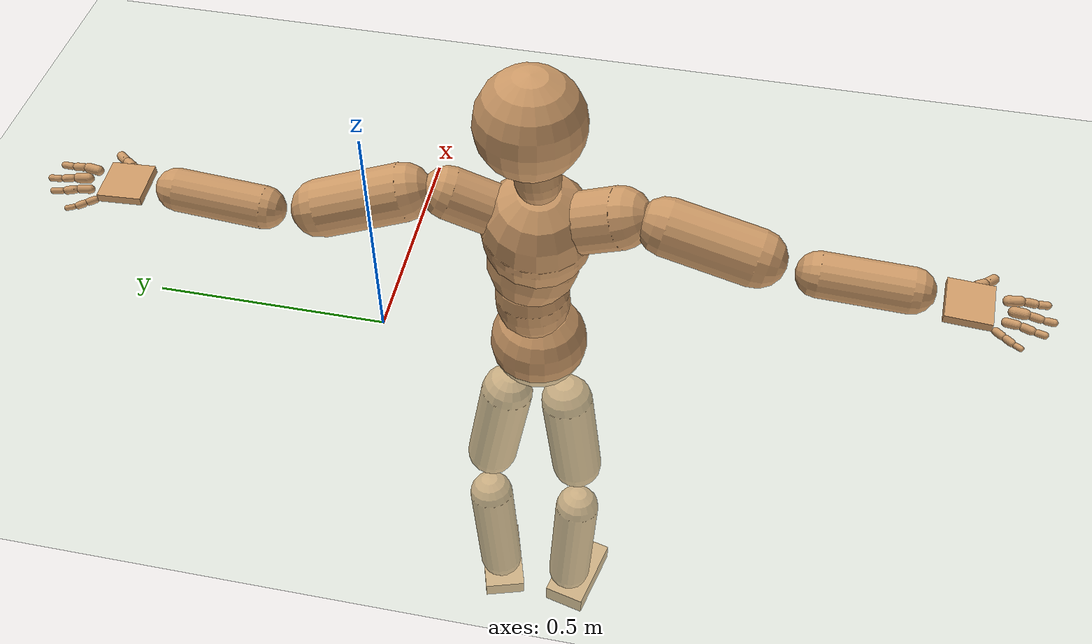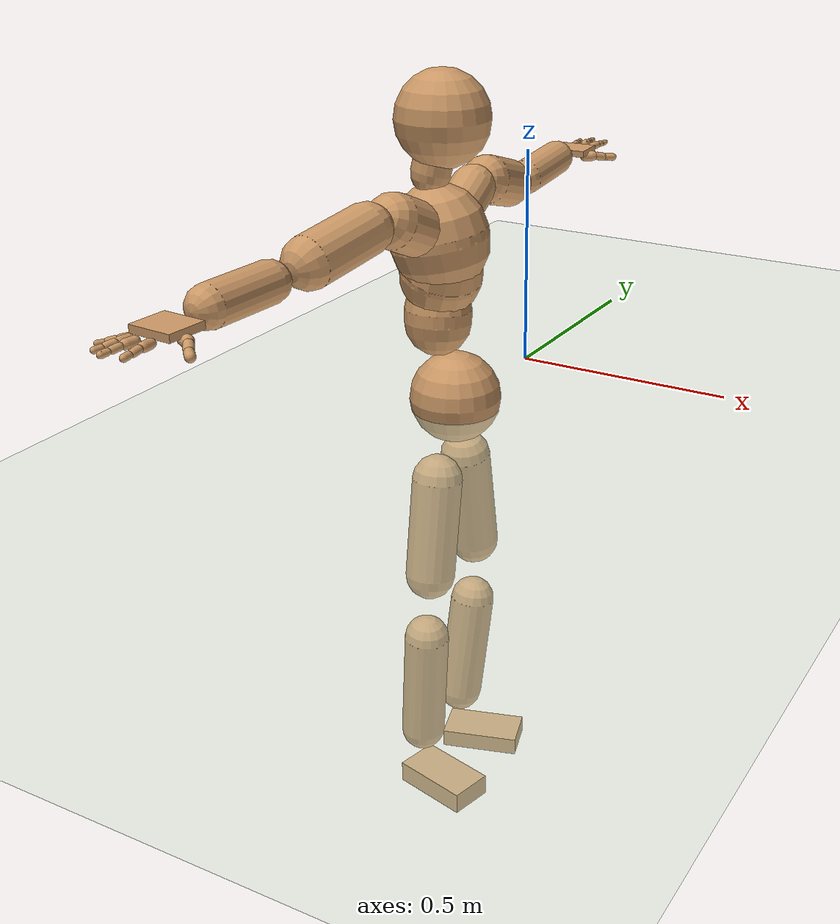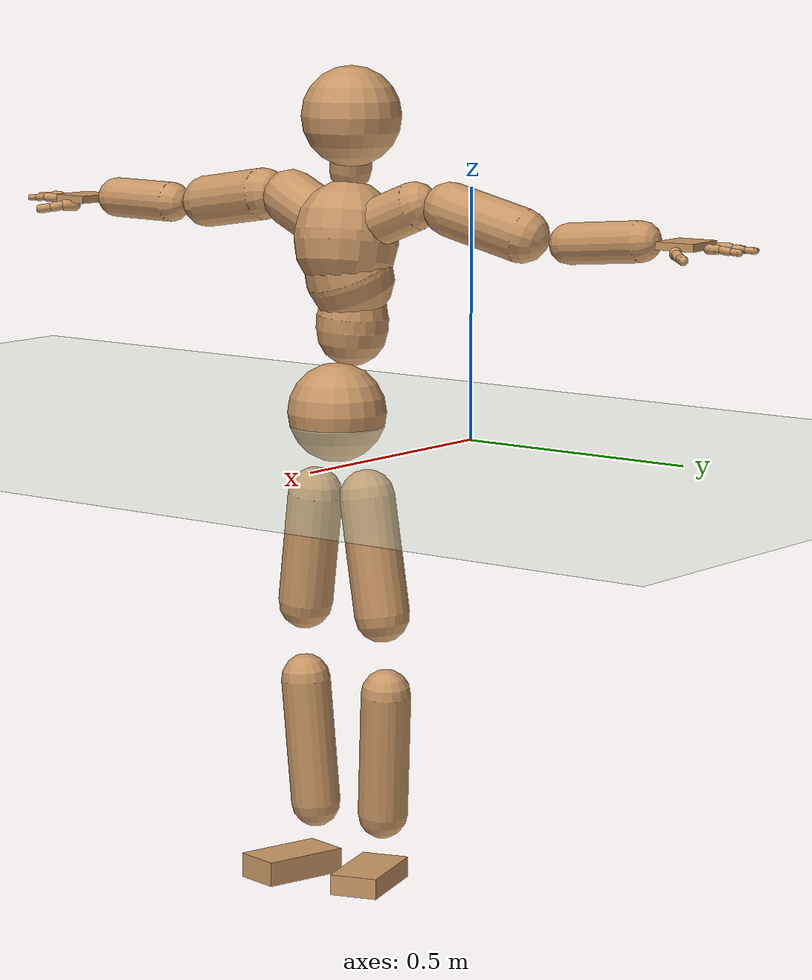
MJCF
<mujoco model="humanoid">
  <compiler coordinate="local" angle="radian"/>
  <default>
    <joint damping="0.0" armature="0.01" stiffness="0.0" limited="true"/>
    <geom conaffinity="1" condim="3" contype="7" margin="0.001" rgba="0.8 0.6 .4 1"/>
  </default>
  <asset>
    <texture type="skybox" builtin="gradient" rgb1=".4 .5 .6" rgb2="0 0 0" width="100" height="100"/>
    <texture builtin="flat" height="1278" mark="cross" markrgb="1 1 1" name="texgeom" random="0.01" rgb1="0.8 0.6 0.4" rgb2="0.8 0.6 0.4" type="cube" width="127"/>
    <texture builtin="checker" height="100" name="texplane" rgb1="0 0 0" rgb2="0.8 0.8 0.8" type="2d" width="100"/>
    <material name="MatPlane" reflectance="0.5" shininess="1" specular="1" texrepeat="60 60" texture="texplane"/>
    <material name="geom" texture="texgeom" texuniform="true"/>
  </asset>
  <worldbody>
    <light cutoff="100" diffuse="1 1 1" dir="-0 0 -1.3" directional="true" exponent="1" pos="0 0 1.3" specular=".1 .1 .1"/>
    <geom conaffinity="1" condim="3" name="floor" pos="0 0 0" rgba="0.8 0.9 0.8 1" size="100 100 .2" type="plane" material="MatPlane"/>
    <body name="Pelvis" pos="0.0015 -0.3378 0.0243">
      <freejoint name="Pelvis"/>
      <geom type="sphere" contype="1" conaffinity="1" density="500" size="0.1011" pos="0.0000 0.0000 0.0000" name="Pelvis"/>
      <body name="L_Hip" pos="-0.0144 0.0536 -0.0897">
        <joint name="L_Hip_x" type="hinge" pos="0 0 0" axis="1 0 0" stiffness="800" damping="80" armature="0.02" range="-180.0000 180.0000"/>
        <joint name="L_Hip_y" type="hinge" pos="0 0 0" axis="0 1 0" stiffness="800" damping="80" armature="0.02" range="-180.0000 180.0000"/>
        <joint name="L_Hip_z" type="hinge" pos="0 0 0" axis="0 0 1" stiffness="800" damping="80" armature="0.02" range="-180.0000 180.0000"/>
        <geom type="capsule" contype="1" conaffinity="1" density="500" fromto="0.0001 0.0130 -0.0798 0.0005 0.0519 -0.3190" size="0.0566" name="L_Hip"/>
        <body name="L_Knee" pos="0.0006 0.0648 -0.3988">
          <joint name="L_Knee_x" type="hinge" pos="0 0 0" axis="1 0 0" stiffness="800" damping="80" armature="0.02" range="-180.0000 180.0000"/>
          <joint name="L_Knee_y" type="hinge" pos="0 0 0" axis="0 1 0" stiffness="800" damping="80" armature="0.02" range="-180.0000 180.0000"/>
          <joint name="L_Knee_z" type="hinge" pos="0 0 0" axis="0 0 1" stiffness="800" damping="80" armature="0.02" range="-180.0000 180.0000"/>
          <geom type="capsule" contype="1" conaffinity="1" density="500" fromto="-0.0072 -0.0083 -0.0864 -0.0289 -0.0333 -0.3458" size="0.0515" name="L_Knee"/>
          <body name="L_Ankle" pos="-0.0361 -0.0416 -0.4322">
            <joint name="L_Ankle_x" type="hinge" pos="0 0 0" axis="1 0 0" stiffness="800" damping="80" armature="0.02" range="-180.0000 180.0000"/>
            <joint name="L_Ankle_y" type="hinge" pos="0 0 0" axis="0 1 0" stiffness="800" damping="80" armature="0.02" range="-180.0000 180.0000"/>
            <joint name="L_Ankle_z" type="hinge" pos="0 0 0" axis="0 0 1" stiffness="800" damping="80" armature="0.02" range="-180.0000 180.0000"/>
            <geom type="box" contype="1" conaffinity="1" density="500" pos="0.0665 0.0203 -0.0310" size="0.0917 0.0499 0.021" quat="0.9891 0.0000 0.0000 0.1473" name="L_Ankle"/>
            <body name="L_Toe" pos="0.1331 0.0406 -0.062">
              <joint name="L_Toe_x" type="hinge" pos="0 0 0" axis="1 0 0" stiffness="500" damping="50" armature="0.02" range="-180.0000 180.0000"/>
              <joint name="L_Toe_y" type="hinge" pos="0 0 0" axis="0 1 0" stiffness="500" damping="50" armature="0.02" range="-180.0000 180.0000"/>
              <joint name="L_Toe_z" type="hinge" pos="0 0 0" axis="0 0 1" stiffness="500" damping="50" armature="0.02" range="-180.0000 180.0000"/>
              <geom type="box" contype="1" conaffinity="1" density="500" pos="0.0000 0.0000 0.0313" size="0.001 0.0024 0.0011" quat="0.9884 0.0000 0.0000 0.1520" name="L_Toe"/>
            </body>
          </body>
        </body>
      </body>
      <body name="R_Hip" pos="-0.0085 -0.0555 -0.1008">
        <joint name="R_Hip_x" type="hinge" pos="0 0 0" axis="1 0 0" stiffness="800" damping="80" armature="0.02" range="-180.0000 180.0000"/>
        <joint name="R_Hip_y" type="hinge" pos="0 0 0" axis="0 1 0" stiffness="800" damping="80" armature="0.02" range="-180.0000 180.0000"/>
        <joint name="R_Hip_z" type="hinge" pos="0 0 0" axis="0 0 1" stiffness="800" damping="80" armature="0.02" range="-180.0000 180.0000"/>
        <geom type="capsule" contype="1" conaffinity="1" density="500" fromto="-0.0014 -0.0100 -0.0762 -0.0056 -0.0398 -0.3048" size="0.0562" name="R_Hip"/>
        <body name="R_Knee" pos="-0.007 -0.0498 -0.381">
          <joint name="R_Knee_x" type="hinge" pos="0 0 0" axis="1 0 0" stiffness="800" damping="80" armature="0.02" range="-180.0000 180.0000"/>
          <joint name="R_Knee_y" type="hinge" pos="0 0 0" axis="0 1 0" stiffness="800" damping="80" armature="0.02" range="-180.0000 180.0000"/>
          <joint name="R_Knee_z" type="hinge" pos="0 0 0" axis="0 0 1" stiffness="800" damping="80" armature="0.02" range="-180.0000 180.0000"/>
          <geom type="capsule" contype="1" conaffinity="1" density="500" fromto="-0.0069 0.0031 -0.0892 -0.0275 0.0123 -0.3570" size="0.051" name="R_Knee"/>
          <body name="R_Ankle" pos="-0.0343 0.0154 -0.4462">
            <joint name="R_Ankle_x" type="hinge" pos="0 0 0" axis="1 0 0" stiffness="800" damping="80" armature="0.02" range="-180.0000 180.0000"/>
            <joint name="R_Ankle_y" type="hinge" pos="0 0 0" axis="0 1 0" stiffness="800" damping="80" armature="0.02" range="-180.0000 180.0000"/>
            <joint name="R_Ankle_z" type="hinge" pos="0 0 0" axis="0 0 1" stiffness="800" damping="80" armature="0.02" range="-180.0000 180.0000"/>
            <geom type="box" contype="1" conaffinity="1" density="500" pos="0.0699 -0.0166 -0.0303" size="0.0917 0.0499 0.0252" quat="0.9932 0.0000 0.0000 -0.1162" name="R_Ankle"/>
            <body name="R_Toe" pos="0.1399 -0.0332 -0.0606">
              <joint name="R_Toe_x" type="hinge" pos="0 0 0" axis="1 0 0" stiffness="500" damping="50" armature="0.02" range="-180.0000 180.0000"/>
              <joint name="R_Toe_y" type="hinge" pos="0 0 0" axis="0 1 0" stiffness="500" damping="50" armature="0.02" range="-180.0000 180.0000"/>
              <joint name="R_Toe_z" type="hinge" pos="0 0 0" axis="0 0 1" stiffness="500" damping="50" armature="0.02" range="-180.0000 180.0000"/>
              <geom type="box" contype="1" conaffinity="1" density="500" pos="0.0000 0.0000 0.0264" size="0.001 0.0024 0.0011" quat="0.9942 0.0000 0.0000 -0.1079" name="R_Toe"/>
            </body>
          </body>
        </body>
      </body>
      <body name="Torso" pos="-0.0441 -0.0004 0.1087">
        <joint name="Torso_x" type="hinge" pos="0 0 0" axis="1 0 0" stiffness="1000" damping="100" armature="0.02" range="-180.0000 180.0000"/>
        <joint name="Torso_y" type="hinge" pos="0 0 0" axis="0 1 0" stiffness="1000" damping="100" armature="0.02" range="-180.0000 180.0000"/>
        <joint name="Torso_z" type="hinge" pos="0 0 0" axis="0 0 1" stiffness="1000" damping="100" armature="0.02" range="-180.0000 180.0000"/>
        <geom type="capsule" contype="1" conaffinity="1" density="500" fromto="-0.0003 0.0061 0.0838 -0.0002 0.0040 0.0558" size="0.0737" name="Torso"/>
        <body name="Spine" pos="-0.0005 0.0101 0.1396">
          <joint name="Spine_x" type="hinge" pos="0 0 0" axis="1 0 0" stiffness="1000" damping="100" armature="0.02" range="-180.0000 180.0000"/>
          <joint name="Spine_y" type="hinge" pos="0 0 0" axis="0 1 0" stiffness="1000" damping="100" armature="0.02" range="-180.0000 180.0000"/>
          <joint name="Spine_z" type="hinge" pos="0 0 0" axis="0 0 1" stiffness="1000" damping="100" armature="0.02" range="-180.0000 180.0000"/>
          <geom type="capsule" contype="1" conaffinity="1" density="500" fromto="0.0116 -0.0059 0.0320 0.0077 -0.0039 0.0213" size="0.0898" name="Spine"/>
          <body name="Chest" pos="0.0193 -0.0098 0.0533">
            <joint name="Chest_x" type="hinge" pos="0 0 0" axis="1 0 0" stiffness="1000" damping="100" armature="0.02" range="-180.0000 180.0000"/>
            <joint name="Chest_y" type="hinge" pos="0 0 0" axis="0 1 0" stiffness="1000" damping="100" armature="0.02" range="-180.0000 180.0000"/>
            <joint name="Chest_z" type="hinge" pos="0 0 0" axis="0 0 1" stiffness="1000" damping="100" armature="0.02" range="-180.0000 180.0000"/>
            <geom type="capsule" contype="1" conaffinity="1" density="500" fromto="-0.0105 -0.0029 0.0607 -0.0070 -0.0019 0.0405" size="0.1066" name="Chest"/>
            <body name="Neck" pos="-0.0311 -0.0102 0.1579">
              <joint name="Neck_x" type="hinge" pos="0 0 0" axis="1 0 0" stiffness="500" damping="50" armature="0.02" range="-180.0000 180.0000"/>
              <joint name="Neck_y" type="hinge" pos="0 0 0" axis="0 1 0" stiffness="500" damping="50" armature="0.02" range="-180.0000 180.0000"/>
              <joint name="Neck_z" type="hinge" pos="0 0 0" axis="0 0 1" stiffness="500" damping="50" armature="0.02" range="-180.0000 180.0000"/>
              <geom type="capsule" contype="1" conaffinity="1" density="500" fromto="0.0050 0.0046 0.0277 0.0199 0.0184 0.1108" size="0.0428" name="Neck"/>
              <body name="Head" pos="0.0248 0.023 0.1385">
                <joint name="Head_x" type="hinge" pos="0 0 0" axis="1 0 0" stiffness="500" damping="50" armature="0.02" range="-180.0000 180.0000"/>
                <joint name="Head_y" type="hinge" pos="0 0 0" axis="0 1 0" stiffness="500" damping="50" armature="0.02" range="-180.0000 180.0000"/>
                <joint name="Head_z" type="hinge" pos="0 0 0" axis="0 0 1" stiffness="500" damping="50" armature="0.02" range="-180.0000 180.0000"/>
                <geom type="sphere" contype="1" conaffinity="1" density="500" size="0.1017" pos="0.0000 0.0000 0.0000" name="Head"/>
              </body>
            </body>
            <body name="L_Thorax" pos="-0.0089 0.0438 0.0725">
              <joint name="L_Thorax_x" type="hinge" pos="0 0 0" axis="1 0 0" stiffness="500" damping="50" armature="0.02" range="-180.0000 180.0000"/>
              <joint name="L_Thorax_y" type="hinge" pos="0 0 0" axis="0 1 0" stiffness="500" damping="50" armature="0.02" range="-180.0000 180.0000"/>
              <joint name="L_Thorax_z" type="hinge" pos="0 0 0" axis="0 0 1" stiffness="500" damping="50" armature="0.02" range="-180.0000 180.0000"/>
              <geom type="capsule" contype="1" conaffinity="1" density="500" fromto="-0.0029 0.0294 0.0125 -0.0118 0.1175 0.0500" size="0.0498" name="L_Thorax"/>
              <body name="L_Shoulder" pos="-0.0147 0.1468 0.0626">
                <joint name="L_Shoulder_x" type="hinge" pos="0 0 0" axis="1 0 0" stiffness="500" damping="50" armature="0.02" range="-180.0000 180.0000"/>
                <joint name="L_Shoulder_y" type="hinge" pos="0 0 0" axis="0 1 0" stiffness="500" damping="50" armature="0.02" range="-180.0000 180.0000"/>
                <joint name="L_Shoulder_z" type="hinge" pos="0 0 0" axis="0 0 1" stiffness="500" damping="50" armature="0.02" range="-180.0000 180.0000"/>
                <geom type="capsule" contype="1" conaffinity="1" density="500" fromto="-0.0091 0.0519 -0.0147 -0.0365 0.2075 -0.0590" size="0.0548" name="L_Shoulder"/>
                <body name="L_Elbow" pos="-0.0456 0.2594 -0.0737">
                  <joint name="L_Elbow_x" type="hinge" pos="0 0 0" axis="1 0 0" stiffness="500" damping="50" armature="0.02" range="-720.0000 720.0000"/>
                  <joint name="L_Elbow_y" type="hinge" pos="0 0 0" axis="0 1 0" stiffness="500" damping="50" armature="0.02" range="-720.0000 720.0000"/>
                  <joint name="L_Elbow_z" type="hinge" pos="0 0 0" axis="0 0 1" stiffness="500" damping="50" armature="0.02" range="-720.0000 720.0000"/>
                  <geom type="capsule" contype="1" conaffinity="1" density="500" fromto="-0.0003 0.0553 0.0050 -0.0011 0.2214 0.0199" size="0.0409" name="L_Elbow"/>
                  <body name="L_Wrist" pos="-0.0014 0.2767 0.0249">
                    <joint name="L_Wrist_x" type="hinge" pos="0 0 0" axis="1 0 0" stiffness="300" damping="30" armature="0.02" range="-180.0000 180.0000"/>
                    <joint name="L_Wrist_y" type="hinge" pos="0 0 0" axis="0 1 0" stiffness="300" damping="30" armature="0.02" range="-180.0000 180.0000"/>
                    <joint name="L_Wrist_z" type="hinge" pos="0 0 0" axis="0 0 1" stiffness="300" damping="30" armature="0.02" range="-180.0000 180.0000"/>
                    <geom type="box" contype="1" conaffinity="1" density="500" pos="-0.0027 0.0456 -0.0052" size="0.0415 0.0455 0.0078" quat="0.7275 0.0000 0.0000 -0.6861" name="L_Wrist"/>
                    <body name="L_Index1" pos="0.0212 0.1069 -0.0072">
                      <joint name="L_Index1_x" type="hinge" pos="0 0 0" axis="1 0 0" stiffness="100" damping="10" armature="0.02" range="-180.0000 180.0000"/>
                      <joint name="L_Index1_y" type="hinge" pos="0 0 0" axis="0 1 0" stiffness="100" damping="10" armature="0.02" range="-180.0000 180.0000"/>
                      <joint name="L_Index1_z" type="hinge" pos="0 0 0" axis="0 0 1" stiffness="100" damping="10" armature="0.02" range="-180.0000 180.0000"/>
                      <geom type="capsule" contype="1" conaffinity="1" density="500" fromto="0.0007 0.0066 0.0003 0.0029 0.0266 0.0012" size="0.0095" name="L_Index1"/>
                      <body name="L_Index2" pos="0.0036 0.0332 0.0015">
                        <joint name="L_Index2_x" type="hinge" pos="0 0 0" axis="1 0 0" stiffness="100" damping="10" armature="0.02" range="-180.0000 180.0000"/>
                        <joint name="L_Index2_y" type="hinge" pos="0 0 0" axis="0 1 0" stiffness="100" damping="10" armature="0.02" range="-180.0000 180.0000"/>
                        <joint name="L_Index2_z" type="hinge" pos="0 0 0" axis="0 0 1" stiffness="100" damping="10" armature="0.02" range="-180.0000 180.0000"/>
                        <geom type="capsule" contype="1" conaffinity="1" density="500" fromto="-0.0001 0.0047 -0.0005 -0.0002 0.0188 -0.0022" size="0.0078" name="L_Index2"/>
                        <body name="L_Index3" pos="-0.0003 0.0234 -0.0027">
                          <joint name="L_Index3_x" type="hinge" pos="0 0 0" axis="1 0 0" stiffness="100" damping="10" armature="0.02" range="-180.0000 180.0000"/>
                          <joint name="L_Index3_y" type="hinge" pos="0 0 0" axis="0 1 0" stiffness="100" damping="10" armature="0.02" range="-180.0000 180.0000"/>
                          <joint name="L_Index3_z" type="hinge" pos="0 0 0" axis="0 0 1" stiffness="100" damping="10" armature="0.02" range="-180.0000 180.0000"/>
                          <geom type="capsule" contype="1" conaffinity="1" density="500" fromto="0.0003 0.0051 -0.0001 0.0014 0.0204 -0.0006" size="0.0067" name="L_Index3"/>
                        </body>
                      </body>
                    </body>
                    <body name="L_Middle1" pos="-0.0032 0.115 -0.0049">
                      <joint name="L_Middle1_x" type="hinge" pos="0 0 0" axis="1 0 0" stiffness="100" damping="10" armature="0.02" range="-180.0000 180.0000"/>
                      <joint name="L_Middle1_y" type="hinge" pos="0 0 0" axis="0 1 0" stiffness="100" damping="10" armature="0.02" range="-180.0000 180.0000"/>
                      <joint name="L_Middle1_z" type="hinge" pos="0 0 0" axis="0 0 1" stiffness="100" damping="10" armature="0.02" range="-180.0000 180.0000"/>
                      <geom type="capsule" contype="1" conaffinity="1" density="500" fromto="-0.0009 0.0064 0.0001 -0.0035 0.0255 0.0002" size="0.0097" name="L_Middle1"/>
                      <body name="L_Middle2" pos="-0.0044 0.0319 0.0003">
                        <joint name="L_Middle2_x" type="hinge" pos="0 0 0" axis="1 0 0" stiffness="100" damping="10" armature="0.02" range="-180.0000 180.0000"/>
                        <joint name="L_Middle2_y" type="hinge" pos="0 0 0" axis="0 1 0" stiffness="100" damping="10" armature="0.02" range="-180.0000 180.0000"/>
                        <joint name="L_Middle2_z" type="hinge" pos="0 0 0" axis="0 0 1" stiffness="100" damping="10" armature="0.02" range="-180.0000 180.0000"/>
                        <geom type="capsule" contype="1" conaffinity="1" density="500" fromto="-0.0009 0.0049 -0.0005 -0.0036 0.0195 -0.0021" size="0.0072" name="L_Middle2"/>
                        <body name="L_Middle3" pos="-0.0045 0.0244 -0.0027">
                          <joint name="L_Middle3_x" type="hinge" pos="0 0 0" axis="1 0 0" stiffness="100" damping="10" armature="0.02" range="-180.0000 180.0000"/>
                          <joint name="L_Middle3_y" type="hinge" pos="0 0 0" axis="0 1 0" stiffness="100" damping="10" armature="0.02" range="-180.0000 180.0000"/>
                          <joint name="L_Middle3_z" type="hinge" pos="0 0 0" axis="0 0 1" stiffness="100" damping="10" armature="0.02" range="-180.0000 180.0000"/>
                          <geom type="capsule" contype="1" conaffinity="1" density="500" fromto="-0.0005 0.0053 -0.0001 -0.0020 0.0211 -0.0005" size="0.0064" name="L_Middle3"/>
                        </body>
                      </body>
                    </body>
                    <body name="L_Pinky1" pos="-0.0446 0.0889 -0.0136">
                      <joint name="L_Pinky1_x" type="hinge" pos="0 0 0" axis="1 0 0" stiffness="100" damping="10" armature="0.02" range="-180.0000 180.0000"/>
                      <joint name="L_Pinky1_y" type="hinge" pos="0 0 0" axis="0 1 0" stiffness="100" damping="10" armature="0.02" range="-180.0000 180.0000"/>
                      <joint name="L_Pinky1_z" type="hinge" pos="0 0 0" axis="0 0 1" stiffness="100" damping="10" armature="0.02" range="-180.0000 180.0000"/>
                      <geom type="capsule" contype="1" conaffinity="1" density="500" fromto="-0.0025 0.0034 -0.0003 -0.0098 0.0136 -0.0013" size="0.007" name="L_Pinky1"/>
                      <body name="L_Pinky2" pos="-0.0123 0.017 -0.0016">
                        <joint name="L_Pinky2_x" type="hinge" pos="0 0 0" axis="1 0 0" stiffness="100" damping="10" armature="0.02" range="-180.0000 180.0000"/>
                        <joint name="L_Pinky2_y" type="hinge" pos="0 0 0" axis="0 1 0" stiffness="100" damping="10" armature="0.02" range="-180.0000 180.0000"/>
                        <joint name="L_Pinky2_z" type="hinge" pos="0 0 0" axis="0 0 1" stiffness="100" damping="10" armature="0.02" range="-180.0000 180.0000"/>
                        <geom type="capsule" contype="1" conaffinity="1" density="500" fromto="-0.0023 0.0033 -0.0004 -0.0091 0.0132 -0.0016" size="0.0067" name="L_Pinky2"/>
                        <body name="L_Pinky3" pos="-0.0114 0.0165 -0.002">
                          <joint name="L_Pinky3_x" type="hinge" pos="0 0 0" axis="1 0 0" stiffness="100" damping="10" armature="0.02" range="-180.0000 180.0000"/>
                          <joint name="L_Pinky3_y" type="hinge" pos="0 0 0" axis="0 1 0" stiffness="100" damping="10" armature="0.02" range="-180.0000 180.0000"/>
                          <joint name="L_Pinky3_z" type="hinge" pos="0 0 0" axis="0 0 1" stiffness="100" damping="10" armature="0.02" range="-180.0000 180.0000"/>
                          <geom type="capsule" contype="1" conaffinity="1" density="500" fromto="-0.0019 0.0037 -0.0000 -0.0075 0.0148 -0.0000" size="0.0051" name="L_Pinky3"/>
                        </body>
                      </body>
                    </body>
                    <body name="L_Ring1" pos="-0.0274 0.1027 -0.0081">
                      <joint name="L_Ring1_x" type="hinge" pos="0 0 0" axis="1 0 0" stiffness="100" damping="10" armature="0.02" range="-180.0000 180.0000"/>
                      <joint name="L_Ring1_y" type="hinge" pos="0 0 0" axis="0 1 0" stiffness="100" damping="10" armature="0.02" range="-180.0000 180.0000"/>
                      <joint name="L_Ring1_z" type="hinge" pos="0 0 0" axis="0 0 1" stiffness="100" damping="10" armature="0.02" range="-180.0000 180.0000"/>
                      <geom type="capsule" contype="1" conaffinity="1" density="500" fromto="-0.0010 0.0059 0.0001 -0.0042 0.0236 0.0003" size="0.0082" name="L_Ring1"/>
                      <body name="L_Ring2" pos="-0.0052 0.0295 0.0003">
                        <joint name="L_Ring2_x" type="hinge" pos="0 0 0" axis="1 0 0" stiffness="100" damping="10" armature="0.02" range="-180.0000 180.0000"/>
                        <joint name="L_Ring2_y" type="hinge" pos="0 0 0" axis="0 1 0" stiffness="100" damping="10" armature="0.02" range="-180.0000 180.0000"/>
                        <joint name="L_Ring2_z" type="hinge" pos="0 0 0" axis="0 0 1" stiffness="100" damping="10" armature="0.02" range="-180.0000 180.0000"/>
                        <geom type="capsule" contype="1" conaffinity="1" density="500" fromto="-0.0014 0.0048 -0.0005 -0.0055 0.0191 -0.0020" size="0.0077" name="L_Ring2"/>
                        <body name="L_Ring3" pos="-0.0069 0.0239 -0.0025">
                          <joint name="L_Ring3_x" type="hinge" pos="0 0 0" axis="1 0 0" stiffness="100" damping="10" armature="0.02" range="-180.0000 180.0000"/>
                          <joint name="L_Ring3_y" type="hinge" pos="0 0 0" axis="0 1 0" stiffness="100" damping="10" armature="0.02" range="-180.0000 180.0000"/>
                          <joint name="L_Ring3_z" type="hinge" pos="0 0 0" axis="0 0 1" stiffness="100" damping="10" armature="0.02" range="-180.0000 180.0000"/>
                          <geom type="capsule" contype="1" conaffinity="1" density="500" fromto="-0.0010 0.0052 -0.0001 -0.0039 0.0207 -0.0004" size="0.006" name="L_Ring3"/>
                        </body>
                      </body>
                    </body>
                    <body name="L_Thumb1" pos="0.0273 0.0429 -0.0185">
                      <joint name="L_Thumb1_x" type="hinge" pos="0 0 0" axis="1 0 0" stiffness="100" damping="10" armature="0.02" range="-180.0000 180.0000"/>
                      <joint name="L_Thumb1_y" type="hinge" pos="0 0 0" axis="0 1 0" stiffness="100" damping="10" armature="0.02" range="-180.0000 180.0000"/>
                      <joint name="L_Thumb1_z" type="hinge" pos="0 0 0" axis="0 0 1" stiffness="100" damping="10" armature="0.02" range="-180.0000 180.0000"/>
                      <geom type="capsule" contype="1" conaffinity="1" density="500" fromto="0.0054 0.0034 0.0003 0.0215 0.0138 0.0013" size="0.0124" name="L_Thumb1"/>
                      <body name="L_Thumb2" pos="0.0269 0.0172 0.0016">
                        <joint name="L_Thumb2_x" type="hinge" pos="0 0 0" axis="1 0 0" stiffness="100" damping="10" armature="0.02" range="-180.0000 180.0000"/>
                        <joint name="L_Thumb2_y" type="hinge" pos="0 0 0" axis="0 1 0" stiffness="100" damping="10" armature="0.02" range="-180.0000 180.0000"/>
                        <joint name="L_Thumb2_z" type="hinge" pos="0 0 0" axis="0 0 1" stiffness="100" damping="10" armature="0.02" range="-180.0000 180.0000"/>
                        <geom type="capsule" contype="1" conaffinity="1" density="500" fromto="0.0034 0.0041 -0.0010 0.0137 0.0164 -0.0041" size="0.01" name="L_Thumb2"/>
                        <body name="L_Thumb3" pos="0.0171 0.0205 -0.0051">
                          <joint name="L_Thumb3_x" type="hinge" pos="0 0 0" axis="1 0 0" stiffness="100" damping="10" armature="0.02" range="-180.0000 180.0000"/>
                          <joint name="L_Thumb3_y" type="hinge" pos="0 0 0" axis="0 1 0" stiffness="100" damping="10" armature="0.02" range="-180.0000 180.0000"/>
                          <joint name="L_Thumb3_z" type="hinge" pos="0 0 0" axis="0 0 1" stiffness="100" damping="10" armature="0.02" range="-180.0000 180.0000"/>
                          <geom type="capsule" contype="1" conaffinity="1" density="500" fromto="0.0038 0.0045 -0.0006 0.0153 0.0180 -0.0025" size="0.0093" name="L_Thumb3"/>
                        </body>
                      </body>
                    </body>
                  </body>
                </body>
              </body>
            </body>
            <body name="R_Thorax" pos="-0.0125 -0.0481 0.0731">
              <joint name="R_Thorax_x" type="hinge" pos="0 0 0" axis="1 0 0" stiffness="500" damping="50" armature="0.02" range="-180.0000 180.0000"/>
              <joint name="R_Thorax_y" type="hinge" pos="0 0 0" axis="0 1 0" stiffness="500" damping="50" armature="0.02" range="-180.0000 180.0000"/>
              <joint name="R_Thorax_z" type="hinge" pos="0 0 0" axis="0 0 1" stiffness="500" damping="50" armature="0.02" range="-180.0000 180.0000"/>
              <geom type="capsule" contype="1" conaffinity="1" density="500" fromto="-0.0024 -0.0271 0.0120 -0.0096 -0.1083 0.0480" size="0.0587" name="R_Thorax"/>
              <body name="R_Shoulder" pos="-0.012 -0.1354 0.06">
                <joint name="R_Shoulder_x" type="hinge" pos="0 0 0" axis="1 0 0" stiffness="500" damping="50" armature="0.02" range="-180.0000 180.0000"/>
                <joint name="R_Shoulder_y" type="hinge" pos="0 0 0" axis="0 1 0" stiffness="500" damping="50" armature="0.02" range="-180.0000 180.0000"/>
                <joint name="R_Shoulder_z" type="hinge" pos="0 0 0" axis="0 0 1" stiffness="500" damping="50" armature="0.02" range="-180.0000 180.0000"/>
                <geom type="capsule" contype="1" conaffinity="1" density="500" fromto="-0.0066 -0.0557 -0.0088 -0.0264 -0.2227 -0.0351" size="0.0539" name="R_Shoulder"/>
                <body name="R_Elbow" pos="-0.0329 -0.2783 -0.0439">
                  <joint name="R_Elbow_x" type="hinge" pos="0 0 0" axis="1 0 0" stiffness="500" damping="50" armature="0.02" range="-720.0000 720.0000"/>
                  <joint name="R_Elbow_y" type="hinge" pos="0 0 0" axis="0 1 0" stiffness="500" damping="50" armature="0.02" range="-720.0000 720.0000"/>
                  <joint name="R_Elbow_z" type="hinge" pos="0 0 0" axis="0 0 1" stiffness="500" damping="50" armature="0.02" range="-720.0000 720.0000"/>
                  <geom type="capsule" contype="1" conaffinity="1" density="500" fromto="-0.0024 -0.0536 0.0001 -0.0097 -0.2145 0.0005" size="0.0419" name="R_Elbow"/>
                  <body name="R_Wrist" pos="-0.0121 -0.2681 0.0007">
                    <joint name="R_Wrist_x" type="hinge" pos="0 0 0" axis="1 0 0" stiffness="300" damping="30" armature="0.02" range="-180.0000 180.0000"/>
                    <joint name="R_Wrist_y" type="hinge" pos="0 0 0" axis="0 1 0" stiffness="300" damping="30" armature="0.02" range="-180.0000 180.0000"/>
                    <joint name="R_Wrist_z" type="hinge" pos="0 0 0" axis="0 0 1" stiffness="300" damping="30" armature="0.02" range="-180.0000 180.0000"/>
                    <geom type="box" contype="1" conaffinity="1" density="500" pos="-0.0032 -0.0454 -0.0070" size="0.0415 0.0468 0.0079" quat="0.7315 0.0000 0.0000 0.6818" name="R_Wrist"/>
                    <body name="R_Index1" pos="0.0202 -0.1064 -0.0108">
                      <joint name="R_Index1_x" type="hinge" pos="0 0 0" axis="1 0 0" stiffness="100" damping="10" armature="0.02" range="-180.0000 180.0000"/>
                      <joint name="R_Index1_y" type="hinge" pos="0 0 0" axis="0 1 0" stiffness="100" damping="10" armature="0.02" range="-180.0000 180.0000"/>
                      <joint name="R_Index1_z" type="hinge" pos="0 0 0" axis="0 0 1" stiffness="100" damping="10" armature="0.02" range="-180.0000 180.0000"/>
                      <geom type="capsule" contype="1" conaffinity="1" density="500" fromto="0.0007 -0.0066 0.0003 0.0029 -0.0266 0.0012" size="0.0095" name="R_Index1"/>
                      <body name="R_Index2" pos="0.0036 -0.0332 0.0015">
                        <joint name="R_Index2_x" type="hinge" pos="0 0 0" axis="1 0 0" stiffness="100" damping="10" armature="0.02" range="-180.0000 180.0000"/>
                        <joint name="R_Index2_y" type="hinge" pos="0 0 0" axis="0 1 0" stiffness="100" damping="10" armature="0.02" range="-180.0000 180.0000"/>
                        <joint name="R_Index2_z" type="hinge" pos="0 0 0" axis="0 0 1" stiffness="100" damping="10" armature="0.02" range="-180.0000 180.0000"/>
                        <geom type="capsule" contype="1" conaffinity="1" density="500" fromto="-0.0001 -0.0047 -0.0005 -0.0002 -0.0188 -0.0022" size="0.0078" name="R_Index2"/>
                        <body name="R_Index3" pos="-0.0003 -0.0234 -0.0027">
                          <joint name="R_Index3_x" type="hinge" pos="0 0 0" axis="1 0 0" stiffness="100" damping="10" armature="0.02" range="-180.0000 180.0000"/>
                          <joint name="R_Index3_y" type="hinge" pos="0 0 0" axis="0 1 0" stiffness="100" damping="10" armature="0.02" range="-180.0000 180.0000"/>
                          <joint name="R_Index3_z" type="hinge" pos="0 0 0" axis="0 0 1" stiffness="100" damping="10" armature="0.02" range="-180.0000 180.0000"/>
                          <geom type="capsule" contype="1" conaffinity="1" density="500" fromto="0.0003 -0.0043 -0.0001 0.0014 -0.0172 -0.0006" size="0.007" name="R_Index3"/>
                        </body>
                      </body>
                    </body>
                    <body name="R_Middle1" pos="-0.0042 -0.1145 -0.0085">
                      <joint name="R_Middle1_x" type="hinge" pos="0 0 0" axis="1 0 0" stiffness="100" damping="10" armature="0.02" range="-180.0000 180.0000"/>
                      <joint name="R_Middle1_y" type="hinge" pos="0 0 0" axis="0 1 0" stiffness="100" damping="10" armature="0.02" range="-180.0000 180.0000"/>
                      <joint name="R_Middle1_z" type="hinge" pos="0 0 0" axis="0 0 1" stiffness="100" damping="10" armature="0.02" range="-180.0000 180.0000"/>
                      <geom type="capsule" contype="1" conaffinity="1" density="500" fromto="-0.0009 -0.0064 0.0001 -0.0035 -0.0255 0.0002" size="0.0097" name="R_Middle1"/>
                      <body name="R_Middle2" pos="-0.0044 -0.0319 0.0003">
                        <joint name="R_Middle2_x" type="hinge" pos="0 0 0" axis="1 0 0" stiffness="100" damping="10" armature="0.02" range="-180.0000 180.0000"/>
                        <joint name="R_Middle2_y" type="hinge" pos="0 0 0" axis="0 1 0" stiffness="100" damping="10" armature="0.02" range="-180.0000 180.0000"/>
                        <joint name="R_Middle2_z" type="hinge" pos="0 0 0" axis="0 0 1" stiffness="100" damping="10" armature="0.02" range="-180.0000 180.0000"/>
                        <geom type="capsule" contype="1" conaffinity="1" density="500" fromto="-0.0009 -0.0049 -0.0005 -0.0036 -0.0195 -0.0021" size="0.0072" name="R_Middle2"/>
                        <body name="R_Middle3" pos="-0.0045 -0.0244 -0.0027">
                          <joint name="R_Middle3_x" type="hinge" pos="0 0 0" axis="1 0 0" stiffness="100" damping="10" armature="0.02" range="-180.0000 180.0000"/>
                          <joint name="R_Middle3_y" type="hinge" pos="0 0 0" axis="0 1 0" stiffness="100" damping="10" armature="0.02" range="-180.0000 180.0000"/>
                          <joint name="R_Middle3_z" type="hinge" pos="0 0 0" axis="0 0 1" stiffness="100" damping="10" armature="0.02" range="-180.0000 180.0000"/>
                          <geom type="capsule" contype="1" conaffinity="1" density="500" fromto="-0.0005 -0.0045 -0.0001 -0.0020 -0.0179 -0.0005" size="0.0067" name="R_Middle3"/>
                        </body>
                      </body>
                    </body>
                    <body name="R_Pinky1" pos="-0.0457 -0.0885 -0.0172">
                      <joint name="R_Pinky1_x" type="hinge" pos="0 0 0" axis="1 0 0" stiffness="100" damping="10" armature="0.02" range="-180.0000 180.0000"/>
                      <joint name="R_Pinky1_y" type="hinge" pos="0 0 0" axis="0 1 0" stiffness="100" damping="10" armature="0.02" range="-180.0000 180.0000"/>
                      <joint name="R_Pinky1_z" type="hinge" pos="0 0 0" axis="0 0 1" stiffness="100" damping="10" armature="0.02" range="-180.0000 180.0000"/>
                      <geom type="capsule" contype="1" conaffinity="1" density="500" fromto="-0.0025 -0.0034 -0.0003 -0.0098 -0.0136 -0.0013" size="0.007" name="R_Pinky1"/>
                      <body name="R_Pinky2" pos="-0.0123 -0.017 -0.0016">
                        <joint name="R_Pinky2_x" type="hinge" pos="0 0 0" axis="1 0 0" stiffness="100" damping="10" armature="0.02" range="-180.0000 180.0000"/>
                        <joint name="R_Pinky2_y" type="hinge" pos="0 0 0" axis="0 1 0" stiffness="100" damping="10" armature="0.02" range="-180.0000 180.0000"/>
                        <joint name="R_Pinky2_z" type="hinge" pos="0 0 0" axis="0 0 1" stiffness="100" damping="10" armature="0.02" range="-180.0000 180.0000"/>
                        <geom type="capsule" contype="1" conaffinity="1" density="500" fromto="-0.0023 -0.0033 -0.0004 -0.0091 -0.0132 -0.0016" size="0.0067" name="R_Pinky2"/>
                        <body name="R_Pinky3" pos="-0.0114 -0.0165 -0.002">
                          <joint name="R_Pinky3_x" type="hinge" pos="0 0 0" axis="1 0 0" stiffness="100" damping="10" armature="0.02" range="-180.0000 180.0000"/>
                          <joint name="R_Pinky3_y" type="hinge" pos="0 0 0" axis="0 1 0" stiffness="100" damping="10" armature="0.02" range="-180.0000 180.0000"/>
                          <joint name="R_Pinky3_z" type="hinge" pos="0 0 0" axis="0 0 1" stiffness="100" damping="10" armature="0.02" range="-180.0000 180.0000"/>
                          <geom type="capsule" contype="1" conaffinity="1" density="500" fromto="-0.0019 -0.0029 -0.0000 -0.0075 -0.0116 -0.0000" size="0.0053" name="R_Pinky3"/>
                        </body>
                      </body>
                    </body>
                    <body name="R_Ring1" pos="-0.0285 -0.1022 -0.0117">
                      <joint name="R_Ring1_x" type="hinge" pos="0 0 0" axis="1 0 0" stiffness="100" damping="10" armature="0.02" range="-180.0000 180.0000"/>
                      <joint name="R_Ring1_y" type="hinge" pos="0 0 0" axis="0 1 0" stiffness="100" damping="10" armature="0.02" range="-180.0000 180.0000"/>
                      <joint name="R_Ring1_z" type="hinge" pos="0 0 0" axis="0 0 1" stiffness="100" damping="10" armature="0.02" range="-180.0000 180.0000"/>
                      <geom type="capsule" contype="1" conaffinity="1" density="500" fromto="-0.0010 -0.0059 0.0001 -0.0042 -0.0236 0.0003" size="0.0082" name="R_Ring1"/>
                      <body name="R_Ring2" pos="-0.0052 -0.0295 0.0003">
                        <joint name="R_Ring2_x" type="hinge" pos="0 0 0" axis="1 0 0" stiffness="100" damping="10" armature="0.02" range="-180.0000 180.0000"/>
                        <joint name="R_Ring2_y" type="hinge" pos="0 0 0" axis="0 1 0" stiffness="100" damping="10" armature="0.02" range="-180.0000 180.0000"/>
                        <joint name="R_Ring2_z" type="hinge" pos="0 0 0" axis="0 0 1" stiffness="100" damping="10" armature="0.02" range="-180.0000 180.0000"/>
                        <geom type="capsule" contype="1" conaffinity="1" density="500" fromto="-0.0014 -0.0048 -0.0005 -0.0055 -0.0191 -0.0020" size="0.0077" name="R_Ring2"/>
                        <body name="R_Ring3" pos="-0.0069 -0.0239 -0.0025">
                          <joint name="R_Ring3_x" type="hinge" pos="0 0 0" axis="1 0 0" stiffness="100" damping="10" armature="0.02" range="-180.0000 180.0000"/>
                          <joint name="R_Ring3_y" type="hinge" pos="0 0 0" axis="0 1 0" stiffness="100" damping="10" armature="0.02" range="-180.0000 180.0000"/>
                          <joint name="R_Ring3_z" type="hinge" pos="0 0 0" axis="0 0 1" stiffness="100" damping="10" armature="0.02" range="-180.0000 180.0000"/>
                          <geom type="capsule" contype="1" conaffinity="1" density="500" fromto="-0.0010 -0.0044 -0.0001 -0.0039 -0.0175 -0.0004" size="0.0063" name="R_Ring3"/>
                        </body>
                      </body>
                    </body>
                    <body name="R_Thumb1" pos="0.0263 -0.0424 -0.0221">
                      <joint name="R_Thumb1_x" type="hinge" pos="0 0 0" axis="1 0 0" stiffness="100" damping="10" armature="0.02" range="-180.0000 180.0000"/>
                      <joint name="R_Thumb1_y" type="hinge" pos="0 0 0" axis="0 1 0" stiffness="100" damping="10" armature="0.02" range="-180.0000 180.0000"/>
                      <joint name="R_Thumb1_z" type="hinge" pos="0 0 0" axis="0 0 1" stiffness="100" damping="10" armature="0.02" range="-180.0000 180.0000"/>
                      <geom type="capsule" contype="1" conaffinity="1" density="500" fromto="0.0054 -0.0034 0.0003 0.0215 -0.0138 0.0013" size="0.0124" name="R_Thumb1"/>
                      <body name="R_Thumb2" pos="0.0269 -0.0172 0.0016">
                        <joint name="R_Thumb2_x" type="hinge" pos="0 0 0" axis="1 0 0" stiffness="100" damping="10" armature="0.02" range="-180.0000 180.0000"/>
                        <joint name="R_Thumb2_y" type="hinge" pos="0 0 0" axis="0 1 0" stiffness="100" damping="10" armature="0.02" range="-180.0000 180.0000"/>
                        <joint name="R_Thumb2_z" type="hinge" pos="0 0 0" axis="0 0 1" stiffness="100" damping="10" armature="0.02" range="-180.0000 180.0000"/>
                        <geom type="capsule" contype="1" conaffinity="1" density="500" fromto="0.0034 -0.0041 -0.0010 0.0137 -0.0164 -0.0041" size="0.01" name="R_Thumb2"/>
                        <body name="R_Thumb3" pos="0.0171 -0.0205 -0.0051">
                          <joint name="R_Thumb3_x" type="hinge" pos="0 0 0" axis="1 0 0" stiffness="100" damping="10" armature="0.02" range="-180.0000 180.0000"/>
                          <joint name="R_Thumb3_y" type="hinge" pos="0 0 0" axis="0 1 0" stiffness="100" damping="10" armature="0.02" range="-180.0000 180.0000"/>
                          <joint name="R_Thumb3_z" type="hinge" pos="0 0 0" axis="0 0 1" stiffness="100" damping="10" armature="0.02" range="-180.0000 180.0000"/>
                          <geom type="capsule" contype="1" conaffinity="1" density="500" fromto="0.0038 -0.0037 -0.0006 0.0153 -0.0148 -0.0025" size="0.0095" name="R_Thumb3"/>
                        </body>
                      </body>
                    </body>
                  </body>
                </body>
              </body>
            </body>
          </body>
        </body>
      </body>
    </body>
  </worldbody>
  <actuator>
    <motor name="L_Hip_x" joint="L_Hip_x" gear="500"/>
    <motor name="L_Hip_y" joint="L_Hip_y" gear="500"/>
    <motor name="L_Hip_z" joint="L_Hip_z" gear="500"/>
    <motor name="L_Knee_x" joint="L_Knee_x" gear="500"/>
    <motor name="L_Knee_y" joint="L_Knee_y" gear="500"/>
    <motor name="L_Knee_z" joint="L_Knee_z" gear="500"/>
    <motor name="L_Ankle_x" joint="L_Ankle_x" gear="500"/>
    <motor name="L_Ankle_y" joint="L_Ankle_y" gear="500"/>
    <motor name="L_Ankle_z" joint="L_Ankle_z" gear="500"/>
    <motor name="L_Toe_x" joint="L_Toe_x" gear="500"/>
    <motor name="L_Toe_y" joint="L_Toe_y" gear="500"/>
    <motor name="L_Toe_z" joint="L_Toe_z" gear="500"/>
    <motor name="R_Hip_x" joint="R_Hip_x" gear="500"/>
    <motor name="R_Hip_y" joint="R_Hip_y" gear="500"/>
    <motor name="R_Hip_z" joint="R_Hip_z" gear="500"/>
    <motor name="R_Knee_x" joint="R_Knee_x" gear="500"/>
    <motor name="R_Knee_y" joint="R_Knee_y" gear="500"/>
    <motor name="R_Knee_z" joint="R_Knee_z" gear="500"/>
    <motor name="R_Ankle_x" joint="R_Ankle_x" gear="500"/>
    <motor name="R_Ankle_y" joint="R_Ankle_y" gear="500"/>
    <motor name="R_Ankle_z" joint="R_Ankle_z" gear="500"/>
    <motor name="R_Toe_x" joint="R_Toe_x" gear="500"/>
    <motor name="R_Toe_y" joint="R_Toe_y" gear="500"/>
    <motor name="R_Toe_z" joint="R_Toe_z" gear="500"/>
    <motor name="Torso_x" joint="Torso_x" gear="500"/>
    <motor name="Torso_y" joint="Torso_y" gear="500"/>
    <motor name="Torso_z" joint="Torso_z" gear="500"/>
    <motor name="Spine_x" joint="Spine_x" gear="500"/>
    <motor name="Spine_y" joint="Spine_y" gear="500"/>
    <motor name="Spine_z" joint="Spine_z" gear="500"/>
    <motor name="Chest_x" joint="Chest_x" gear="500"/>
    <motor name="Chest_y" joint="Chest_y" gear="500"/>
    <motor name="Chest_z" joint="Chest_z" gear="500"/>
    <motor name="Neck_x" joint="Neck_x" gear="500"/>
    <motor name="Neck_y" joint="Neck_y" gear="500"/>
    <motor name="Neck_z" joint="Neck_z" gear="500"/>
    <motor name="Head_x" joint="Head_x" gear="500"/>
    <motor name="Head_y" joint="Head_y" gear="500"/>
    <motor name="Head_z" joint="Head_z" gear="500"/>
    <motor name="L_Thorax_x" joint="L_Thorax_x" gear="500"/>
    <motor name="L_Thorax_y" joint="L_Thorax_y" gear="500"/>
    <motor name="L_Thorax_z" joint="L_Thorax_z" gear="500"/>
    <motor name="L_Shoulder_x" joint="L_Shoulder_x" gear="500"/>
    <motor name="L_Shoulder_y" joint="L_Shoulder_y" gear="500"/>
    <motor name="L_Shoulder_z" joint="L_Shoulder_z" gear="500"/>
    <motor name="L_Elbow_x" joint="L_Elbow_x" gear="500"/>
    <motor name="L_Elbow_y" joint="L_Elbow_y" gear="500"/>
    <motor name="L_Elbow_z" joint="L_Elbow_z" gear="500"/>
    <motor name="L_Wrist_x" joint="L_Wrist_x" gear="500"/>
    <motor name="L_Wrist_y" joint="L_Wrist_y" gear="500"/>
    <motor name="L_Wrist_z" joint="L_Wrist_z" gear="500"/>
    <motor name="L_Index1_x" joint="L_Index1_x" gear="500"/>
    <motor name="L_Index1_y" joint="L_Index1_y" gear="500"/>
    <motor name="L_Index1_z" joint="L_Index1_z" gear="500"/>
    <motor name="L_Index2_x" joint="L_Index2_x" gear="500"/>
    <motor name="L_Index2_y" joint="L_Index2_y" gear="500"/>
    <motor name="L_Index2_z" joint="L_Index2_z" gear="500"/>
    <motor name="L_Index3_x" joint="L_Index3_x" gear="500"/>
    <motor name="L_Index3_y" joint="L_Index3_y" gear="500"/>
    <motor name="L_Index3_z" joint="L_Index3_z" gear="500"/>
    <motor name="L_Middle1_x" joint="L_Middle1_x" gear="500"/>
    <motor name="L_Middle1_y" joint="L_Middle1_y" gear="500"/>
    <motor name="L_Middle1_z" joint="L_Middle1_z" gear="500"/>
    <motor name="L_Middle2_x" joint="L_Middle2_x" gear="500"/>
    <motor name="L_Middle2_y" joint="L_Middle2_y" gear="500"/>
    <motor name="L_Middle2_z" joint="L_Middle2_z" gear="500"/>
    <motor name="L_Middle3_x" joint="L_Middle3_x" gear="500"/>
    <motor name="L_Middle3_y" joint="L_Middle3_y" gear="500"/>
    <motor name="L_Middle3_z" joint="L_Middle3_z" gear="500"/>
    <motor name="L_Pinky1_x" joint="L_Pinky1_x" gear="500"/>
    <motor name="L_Pinky1_y" joint="L_Pinky1_y" gear="500"/>
    <motor name="L_Pinky1_z" joint="L_Pinky1_z" gear="500"/>
    <motor name="L_Pinky2_x" joint="L_Pinky2_x" gear="500"/>
    <motor name="L_Pinky2_y" joint="L_Pinky2_y" gear="500"/>
    <motor name="L_Pinky2_z" joint="L_Pinky2_z" gear="500"/>
    <motor name="L_Pinky3_x" joint="L_Pinky3_x" gear="500"/>
    <motor name="L_Pinky3_y" joint="L_Pinky3_y" gear="500"/>
    <motor name="L_Pinky3_z" joint="L_Pinky3_z" gear="500"/>
    <motor name="L_Ring1_x" joint="L_Ring1_x" gear="500"/>
    <motor name="L_Ring1_y" joint="L_Ring1_y" gear="500"/>
    <motor name="L_Ring1_z" joint="L_Ring1_z" gear="500"/>
    <motor name="L_Ring2_x" joint="L_Ring2_x" gear="500"/>
    <motor name="L_Ring2_y" joint="L_Ring2_y" gear="500"/>
    <motor name="L_Ring2_z" joint="L_Ring2_z" gear="500"/>
    <motor name="L_Ring3_x" joint="L_Ring3_x" gear="500"/>
    <motor name="L_Ring3_y" joint="L_Ring3_y" gear="500"/>
    <motor name="L_Ring3_z" joint="L_Ring3_z" gear="500"/>
    <motor name="L_Thumb1_x" joint="L_Thumb1_x" gear="500"/>
    <motor name="L_Thumb1_y" joint="L_Thumb1_y" gear="500"/>
    <motor name="L_Thumb1_z" joint="L_Thumb1_z" gear="500"/>
    <motor name="L_Thumb2_x" joint="L_Thumb2_x" gear="500"/>
    <motor name="L_Thumb2_y" joint="L_Thumb2_y" gear="500"/>
    <motor name="L_Thumb2_z" joint="L_Thumb2_z" gear="500"/>
    <motor name="L_Thumb3_x" joint="L_Thumb3_x" gear="500"/>
    <motor name="L_Thumb3_y" joint="L_Thumb3_y" gear="500"/>
    <motor name="L_Thumb3_z" joint="L_Thumb3_z" gear="500"/>
    <motor name="R_Thorax_x" joint="R_Thorax_x" gear="500"/>
    <motor name="R_Thorax_y" joint="R_Thorax_y" gear="500"/>
    <motor name="R_Thorax_z" joint="R_Thorax_z" gear="500"/>
    <motor name="R_Shoulder_x" joint="R_Shoulder_x" gear="500"/>
    <motor name="R_Shoulder_y" joint="R_Shoulder_y" gear="500"/>
    <motor name="R_Shoulder_z" joint="R_Shoulder_z" gear="500"/>
    <motor name="R_Elbow_x" joint="R_Elbow_x" gear="500"/>
    <motor name="R_Elbow_y" joint="R_Elbow_y" gear="500"/>
    <motor name="R_Elbow_z" joint="R_Elbow_z" gear="500"/>
    <motor name="R_Wrist_x" joint="R_Wrist_x" gear="500"/>
    <motor name="R_Wrist_y" joint="R_Wrist_y" gear="500"/>
    <motor name="R_Wrist_z" joint="R_Wrist_z" gear="500"/>
    <motor name="R_Index1_x" joint="R_Index1_x" gear="500"/>
    <motor name="R_Index1_y" joint="R_Index1_y" gear="500"/>
    <motor name="R_Index1_z" joint="R_Index1_z" gear="500"/>
    <motor name="R_Index2_x" joint="R_Index2_x" gear="500"/>
    <motor name="R_Index2_y" joint="R_Index2_y" gear="500"/>
    <motor name="R_Index2_z" joint="R_Index2_z" gear="500"/>
    <motor name="R_Index3_x" joint="R_Index3_x" gear="500"/>
    <motor name="R_Index3_y" joint="R_Index3_y" gear="500"/>
    <motor name="R_Index3_z" joint="R_Index3_z" gear="500"/>
    <motor name="R_Middle1_x" joint="R_Middle1_x" gear="500"/>
    <motor name="R_Middle1_y" joint="R_Middle1_y" gear="500"/>
    <motor name="R_Middle1_z" joint="R_Middle1_z" gear="500"/>
    <motor name="R_Middle2_x" joint="R_Middle2_x" gear="500"/>
    <motor name="R_Middle2_y" joint="R_Middle2_y" gear="500"/>
    <motor name="R_Middle2_z" joint="R_Middle2_z" gear="500"/>
    <motor name="R_Middle3_x" joint="R_Middle3_x" gear="500"/>
    <motor name="R_Middle3_y" joint="R_Middle3_y" gear="500"/>
    <motor name="R_Middle3_z" joint="R_Middle3_z" gear="500"/>
    <motor name="R_Pinky1_x" joint="R_Pinky1_x" gear="500"/>
    <motor name="R_Pinky1_y" joint="R_Pinky1_y" gear="500"/>
    <motor name="R_Pinky1_z" joint="R_Pinky1_z" gear="500"/>
    <motor name="R_Pinky2_x" joint="R_Pinky2_x" gear="500"/>
    <motor name="R_Pinky2_y" joint="R_Pinky2_y" gear="500"/>
    <motor name="R_Pinky2_z" joint="R_Pinky2_z" gear="500"/>
    <motor name="R_Pinky3_x" joint="R_Pinky3_x" gear="500"/>
    <motor name="R_Pinky3_y" joint="R_Pinky3_y" gear="500"/>
    <motor name="R_Pinky3_z" joint="R_Pinky3_z" gear="500"/>
    <motor name="R_Ring1_x" joint="R_Ring1_x" gear="500"/>
    <motor name="R_Ring1_y" joint="R_Ring1_y" gear="500"/>
    <motor name="R_Ring1_z" joint="R_Ring1_z" gear="500"/>
    <motor name="R_Ring2_x" joint="R_Ring2_x" gear="500"/>
    <motor name="R_Ring2_y" joint="R_Ring2_y" gear="500"/>
    <motor name="R_Ring2_z" joint="R_Ring2_z" gear="500"/>
    <motor name="R_Ring3_x" joint="R_Ring3_x" gear="500"/>
    <motor name="R_Ring3_y" joint="R_Ring3_y" gear="500"/>
    <motor name="R_Ring3_z" joint="R_Ring3_z" gear="500"/>
    <motor name="R_Thumb1_x" joint="R_Thumb1_x" gear="500"/>
    <motor name="R_Thumb1_y" joint="R_Thumb1_y" gear="500"/>
    <motor name="R_Thumb1_z" joint="R_Thumb1_z" gear="500"/>
    <motor name="R_Thumb2_x" joint="R_Thumb2_x" gear="500"/>
    <motor name="R_Thumb2_y" joint="R_Thumb2_y" gear="500"/>
    <motor name="R_Thumb2_z" joint="R_Thumb2_z" gear="500"/>
    <motor name="R_Thumb3_x" joint="R_Thumb3_x" gear="500"/>
    <motor name="R_Thumb3_y" joint="R_Thumb3_y" gear="500"/>
    <motor name="R_Thumb3_z" joint="R_Thumb3_z" gear="500"/>
  </actuator>
  <contact>
    <exclude body1="Torso" body2="Chest"/>
    <exclude body1="Head" body2="Chest"/>
    <exclude body1="R_Knee" body2="R_Toe"/>
    <exclude body1="R_Knee" body2="L_Ankle"/>
    <exclude body1="R_Knee" body2="L_Toe"/>
    <exclude body1="L_Knee" body2="L_Toe"/>
    <exclude body1="L_Knee" body2="R_Ankle"/>
    <exclude body1="L_Knee" body2="R_Toe"/>
    <exclude body1="L_Shoulder" body2="Chest"/>
    <exclude body1="R_Shoulder" body2="Chest"/>
  </contact>
  <sensor/>
  <size njmax="700" nconmax="700"/>
</mujoco>
